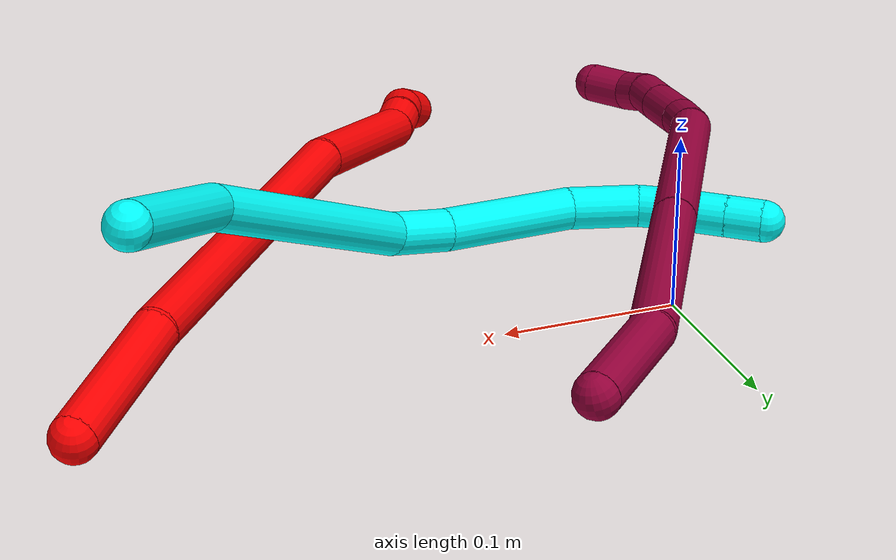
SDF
<sdf version="1.7">
 <world name="default">
  <model name="2">
   <static>0</static>
   <link name="2">
    <collision name="collision-cylinder-e_1_1_4">
     <pose>-0.02513 -0.033486 -0.007141 1.78091 -0.633139 -0.769302</pose>
     <geometry><cylinder><radius>0.0125</radius><length>0.084943</length></cylinder></geometry>
     <surface>
      <friction><ode><mu>1.16</mu><mu2>1.16</mu2><slip1>0</slip1><slip2>0</slip2></ode></friction>
      <contact><ode><kp>1e+06</kp><kd>1</kd><max_vel>0</max_vel><min_depth>0.001</min_depth></ode></contact>
     </surface>
    </collision>
    <visual name="visual-cylinder-e_1_1_4">
     <pose>-0.02513 -0.033486 -0.007141 1.78091 -0.633139 -0.769302</pose>
     <geometry><cylinder><radius>0.0125</radius><length>0.084943</length></cylinder></geometry>
     <material><ambient>1 0 0 1</ambient></material>
    </visual>
    <collision name="collision-cylinder-e_2_4_5">
     <pose>-0.11482 -0.155731 -0.056444 2.01426 -0.5813 -0.884022</pose>
     <geometry><cylinder><radius>0.0125</radius><length>0.235148</length></cylinder></geometry>
     <surface>
      <friction><ode><mu>1.16</mu><mu2>1.16</mu2><slip1>0</slip1><slip2>0</slip2></ode></friction>
      <contact><ode><kp>1e+06</kp><kd>1</kd><max_vel>0</max_vel><min_depth>0.001</min_depth></ode></contact>
     </surface>
    </collision>
    <visual name="visual-cylinder-e_2_4_5">
     <pose>-0.11482 -0.155731 -0.056444 2.01426 -0.5813 -0.884022</pose>
     <geometry><cylinder><radius>0.0125</radius><length>0.235148</length></cylinder></geometry>
     <material><ambient>1 0 0 1</ambient></material>
    </visual>
    <collision name="collision-cylinder-e_3_5_6">
     <pose>-0.212211 -0.281455 -0.128243 2.2466 -0.605936 -1.15454</pose>
     <geometry><cylinder><radius>0.0125</radius><length>0.115284</length></cylinder></geometry>
     <surface>
      <friction><ode><mu>1.16</mu><mu2>1.16</mu2><slip1>0</slip1><slip2>0</slip2></ode></friction>
      <contact><ode><kp>1e+06</kp><kd>1</kd><max_vel>0</max_vel><min_depth>0.001</min_depth></ode></contact>
     </surface>
    </collision>
    <visual name="visual-cylinder-e_3_5_6">
     <pose>-0.212211 -0.281455 -0.128243 2.2466 -0.605936 -1.15454</pose>
     <geometry><cylinder><radius>0.0125</radius><length>0.115284</length></cylinder></geometry>
     <material><ambient>1 0 0 1</ambient></material>
    </visual>
    <collision name="collision-cylinder-e_4_6_7">
     <pose>-0.249905 -0.327765 -0.162047 1.99025 -0.443938 -0.669333</pose>
     <geometry><cylinder><radius>0.0125</radius><length>0.022658</length></cylinder></geometry>
     <surface>
      <friction><ode><mu>1.16</mu><mu2>1.16</mu2><slip1>0</slip1><slip2>0</slip2></ode></friction>
      <contact><ode><kp>1e+06</kp><kd>1</kd><max_vel>0</max_vel><min_depth>0.001</min_depth></ode></contact>
     </surface>
    </collision>
    <visual name="visual-cylinder-e_4_6_7">
     <pose>-0.249905 -0.327765 -0.162047 1.99025 -0.443938 -0.669333</pose>
     <geometry><cylinder><radius>0.0125</radius><length>0.022658</length></cylinder></geometry>
     <material><ambient>1 0 0 1</ambient></material>
    </visual>
    <collision name="collision-cylinder-e_5_7_8">
     <pose>-0.258293 -0.345686 -0.171462 2.11992 -0.336842 -0.589111</pose>
     <geometry><cylinder><radius>0.0125</radius><length>0.021309</length></cylinder></geometry>
     <surface>
      <friction><ode><mu>1.16</mu><mu2>1.16</mu2><slip1>0</slip1><slip2>0</slip2></ode></friction>
      <contact><ode><kp>1e+06</kp><kd>1</kd><max_vel>0</max_vel><min_depth>0.001</min_depth></ode></contact>
     </surface>
    </collision>
    <visual name="visual-cylinder-e_5_7_8">
     <pose>-0.258293 -0.345686 -0.171462 2.11992 -0.336842 -0.589111</pose>
     <geometry><cylinder><radius>0.0125</radius><length>0.021309</length></cylinder></geometry>
     <material><ambient>1 0 0 1</ambient></material>
    </visual>
    <collision name="collision-cylinder-e_6_8_2">
     <pose>-0.267137 -0.359668 -0.183721 2.48487 -0.541406 -1.36712</pose>
     <geometry><cylinder><radius>0.0125</radius><length>0.020657</length></cylinder></geometry>
     <surface>
      <friction><ode><mu>1.16</mu><mu2>1.16</mu2><slip1>0</slip1><slip2>0</slip2></ode></friction>
      <contact><ode><kp>1e+06</kp><kd>1</kd><max_vel>0</max_vel><min_depth>0.001</min_depth></ode></contact>
     </surface>
    </collision>
    <visual name="visual-cylinder-e_6_8_2">
     <pose>-0.267137 -0.359668 -0.183721 2.48487 -0.541406 -1.36712</pose>
     <geometry><cylinder><radius>0.0125</radius><length>0.020657</length></cylinder></geometry>
     <material><ambient>1 0 0 1</ambient></material>
    </visual>
    <collision name="collision-sphere-2">
     <pose>-0.272459 -0.365072 -0.190731 0 -0 0</pose>
     <geometry><sphere><radius>0.0125</radius></sphere></geometry>
     <surface>
      <friction><ode><mu>1.16</mu><mu2>1.16</mu2><slip1>0</slip1><slip2>0</slip2></ode></friction>
      <contact><ode><kp>1e+06</kp><kd>1</kd><max_vel>0</max_vel><min_depth>0.001</min_depth></ode></contact>
     </surface>
    </collision>
    <visual name="visual-sphere-2">
     <pose>-0.272459 -0.365072 -0.190731 0 -0 0</pose>
     <geometry><sphere><radius>0.0125</radius></sphere></geometry>
     <material><ambient>1 0 0 1</ambient></material>
    </visual>
    <collision name="collision-sphere-4">
     <pose>-0.050259 -0.066973 -0.014283 0 -0 0</pose>
     <geometry><sphere><radius>0.0125</radius></sphere></geometry>
     <surface>
      <friction><ode><mu>1.16</mu><mu2>1.16</mu2><slip1>0</slip1><slip2>0</slip2></ode></friction>
      <contact><ode><kp>1e+06</kp><kd>1</kd><max_vel>0</max_vel><min_depth>0.001</min_depth></ode></contact>
     </surface>
    </collision>
    <visual name="visual-sphere-4">
     <pose>-0.050259 -0.066973 -0.014283 0 -0 0</pose>
     <geometry><sphere><radius>0.0125</radius></sphere></geometry>
     <material><ambient>1 0 0 1</ambient></material>
    </visual>
    <collision name="collision-sphere-1">
     <geometry><sphere><radius>0.0125</radius></sphere></geometry>
     <surface>
      <friction><ode><mu>1.16</mu><mu2>1.16</mu2><slip1>0</slip1><slip2>0</slip2></ode></friction>
      <contact><ode><kp>1e+06</kp><kd>1</kd><max_vel>0</max_vel><min_depth>0.001</min_depth></ode></contact>
     </surface>
    </collision>
    <visual name="visual-sphere-1">
     <geometry><sphere><radius>0.0125</radius></sphere></geometry>
     <material><ambient>1 0 0 1</ambient></material>
    </visual>
    <collision name="collision-sphere-8">
     <pose>-0.261814 -0.354264 -0.176711 0 -0 0</pose>
     <geometry><sphere><radius>0.0125</radius></sphere></geometry>
     <surface>
      <friction><ode><mu>1.16</mu><mu2>1.16</mu2><slip1>0</slip1><slip2>0</slip2></ode></friction>
      <contact><ode><kp>1e+06</kp><kd>1</kd><max_vel>0</max_vel><min_depth>0.001</min_depth></ode></contact>
     </surface>
    </collision>
    <visual name="visual-sphere-8">
     <pose>-0.261814 -0.354264 -0.176711 0 -0 0</pose>
     <geometry><sphere><radius>0.0125</radius></sphere></geometry>
     <material><ambient>1 0 0 1</ambient></material>
    </visual>
    <collision name="collision-sphere-5">
     <pose>-0.179381 -0.244488 -0.098606 0 -0 0</pose>
     <geometry><sphere><radius>0.0125</radius></sphere></geometry>
     <surface>
      <friction><ode><mu>1.16</mu><mu2>1.16</mu2><slip1>0</slip1><slip2>0</slip2></ode></friction>
      <contact><ode><kp>1e+06</kp><kd>1</kd><max_vel>0</max_vel><min_depth>0.001</min_depth></ode></contact>
     </surface>
    </collision>
    <visual name="visual-sphere-5">
     <pose>-0.179381 -0.244488 -0.098606 0 -0 0</pose>
     <geometry><sphere><radius>0.0125</radius></sphere></geometry>
     <material><ambient>1 0 0 1</ambient></material>
    </visual>
    <collision name="collision-sphere-6">
     <pose>-0.24504 -0.318421 -0.15788 0 -0 0</pose>
     <geometry><sphere><radius>0.0125</radius></sphere></geometry>
     <surface>
      <friction><ode><mu>1.16</mu><mu2>1.16</mu2><slip1>0</slip1><slip2>0</slip2></ode></friction>
      <contact><ode><kp>1e+06</kp><kd>1</kd><max_vel>0</max_vel><min_depth>0.001</min_depth></ode></contact>
     </surface>
    </collision>
    <visual name="visual-sphere-6">
     <pose>-0.24504 -0.318421 -0.15788 0 -0 0</pose>
     <geometry><sphere><radius>0.0125</radius></sphere></geometry>
     <material><ambient>1 0 0 1</ambient></material>
    </visual>
    <collision name="collision-sphere-7">
     <pose>-0.254771 -0.337109 -0.166214 0 -0 0</pose>
     <geometry><sphere><radius>0.0125</radius></sphere></geometry>
     <surface>
      <friction><ode><mu>1.16</mu><mu2>1.16</mu2><slip1>0</slip1><slip2>0</slip2></ode></friction>
      <contact><ode><kp>1e+06</kp><kd>1</kd><max_vel>0</max_vel><min_depth>0.001</min_depth></ode></contact>
     </surface>
    </collision>
    <visual name="visual-sphere-7">
     <pose>-0.254771 -0.337109 -0.166214 0 -0 0</pose>
     <geometry><sphere><radius>0.0125</radius></sphere></geometry>
     <material><ambient>1 0 0 1</ambient></material>
    </visual>
    <inertial>
     <pose>-0.140567 -0.188268 -0.079569 0 -0 0</pose>
     <mass>0.5</mass>
     <inertia>
      <ixx>-0.000203</ixx>
      <ixy>0</ixy>
      <ixz>0</ixz>
      <iyy>-0.000712</iyy>
      <iyz>0</iyz>
      <izz>0.001651</izz>
     </inertia>
    </inertial>
   </link>
   <pose>0.352297 0.102263 0.045996 -0.356861 0.063043 -0.066797</pose>
  </model>
  <model name="3">
   <static>0</static>
   <link name="3">
    <collision name="collision-cylinder-e_1_1_4">
     <pose>-0.027475 -0.030595 -0.032687 2.38923 -0.550419 -1.24129</pose>
     <geometry><cylinder><radius>0.0125</radius><length>0.10506</length></cylinder></geometry>
     <surface>
      <friction><ode><mu>1.16</mu><mu2>1.16</mu2><slip1>0</slip1><slip2>0</slip2></ode></friction>
      <contact><ode><kp>1e+06</kp><kd>1</kd><max_vel>0</max_vel><min_depth>0.001</min_depth></ode></contact>
     </surface>
    </collision>
    <visual name="visual-cylinder-e_1_1_4">
     <pose>-0.027475 -0.030595 -0.032687 2.38923 -0.550419 -1.24129</pose>
     <geometry><cylinder><radius>0.0125</radius><length>0.10506</length></cylinder></geometry>
     <material><ambient>0.003922 1 0.996078 1</ambient></material>
    </visual>
    <collision name="collision-cylinder-e_2_4_5">
     <pose>-0.112374 -0.083808 -0.115212 2.71558 -0.8094 -2.20641</pose>
     <geometry><cylinder><radius>0.0125</radius><length>0.158655</length></cylinder></geometry>
     <surface>
      <friction><ode><mu>1.16</mu><mu2>1.16</mu2><slip1>0</slip1><slip2>0</slip2></ode></friction>
      <contact><ode><kp>1e+06</kp><kd>1</kd><max_vel>0</max_vel><min_depth>0.001</min_depth></ode></contact>
     </surface>
    </collision>
    <visual name="visual-cylinder-e_2_4_5">
     <pose>-0.112374 -0.083808 -0.115212 2.71558 -0.8094 -2.20641</pose>
     <geometry><cylinder><radius>0.0125</radius><length>0.158655</length></cylinder></geometry>
     <material><ambient>0.003922 1 0.996078 1</ambient></material>
    </visual>
    <collision name="collision-cylinder-e_3_5_6">
     <pose>-0.187004 -0.108721 -0.170647 2.75226 -1.23278 -2.59874</pose>
     <geometry><cylinder><radius>0.0125</radius><length>0.036478</length></cylinder></geometry>
     <surface>
      <friction><ode><mu>1.16</mu><mu2>1.16</mu2><slip1>0</slip1><slip2>0</slip2></ode></friction>
      <contact><ode><kp>1e+06</kp><kd>1</kd><max_vel>0</max_vel><min_depth>0.001</min_depth></ode></contact>
     </surface>
    </collision>
    <visual name="visual-cylinder-e_3_5_6">
     <pose>-0.187004 -0.108721 -0.170647 2.75226 -1.23278 -2.59874</pose>
     <geometry><cylinder><radius>0.0125</radius><length>0.036478</length></cylinder></geometry>
     <material><ambient>0.003922 1 0.996078 1</ambient></material>
    </visual>
    <collision name="collision-cylinder-e_4_6_7">
     <pose>-0.244636 -0.115304 -0.182464 2.53818 -1.38602 -2.42447</pose>
     <geometry><cylinder><radius>0.0125</radius><length>0.082252</length></cylinder></geometry>
     <surface>
      <friction><ode><mu>1.16</mu><mu2>1.16</mu2><slip1>0</slip1><slip2>0</slip2></ode></friction>
      <contact><ode><kp>1e+06</kp><kd>1</kd><max_vel>0</max_vel><min_depth>0.001</min_depth></ode></contact>
     </surface>
    </collision>
    <visual name="visual-cylinder-e_4_6_7">
     <pose>-0.244636 -0.115304 -0.182464 2.53818 -1.38602 -2.42447</pose>
     <geometry><cylinder><radius>0.0125</radius><length>0.082252</length></cylinder></geometry>
     <material><ambient>0.003922 1 0.996078 1</ambient></material>
    </visual>
    <collision name="collision-cylinder-e_5_7_8">
     <pose>-0.305856 -0.115331 -0.18878 -1.59302 -1.36865 1.39047</pose>
     <geometry><cylinder><radius>0.0125</radius><length>0.042451</length></cylinder></geometry>
     <surface>
      <friction><ode><mu>1.16</mu><mu2>1.16</mu2><slip1>0</slip1><slip2>0</slip2></ode></friction>
      <contact><ode><kp>1e+06</kp><kd>1</kd><max_vel>0</max_vel><min_depth>0.001</min_depth></ode></contact>
     </surface>
    </collision>
    <visual name="visual-cylinder-e_5_7_8">
     <pose>-0.305856 -0.115331 -0.18878 -1.59302 -1.36865 1.39047</pose>
     <geometry><cylinder><radius>0.0125</radius><length>0.042451</length></cylinder></geometry>
     <material><ambient>0.003922 1 0.996078 1</ambient></material>
    </visual>
    <collision name="collision-cylinder-e_6_8_9">
     <pose>-0.336806 -0.104777 -0.186819 -1.25513 -0.993116 0.748995</pose>
     <geometry><cylinder><radius>0.0125</radius><length>0.024249</length></cylinder></geometry>
     <surface>
      <friction><ode><mu>1.16</mu><mu2>1.16</mu2><slip1>0</slip1><slip2>0</slip2></ode></friction>
      <contact><ode><kp>1e+06</kp><kd>1</kd><max_vel>0</max_vel><min_depth>0.001</min_depth></ode></contact>
     </surface>
    </collision>
    <visual name="visual-cylinder-e_6_8_9">
     <pose>-0.336806 -0.104777 -0.186819 -1.25513 -0.993116 0.748995</pose>
     <geometry><cylinder><radius>0.0125</radius><length>0.024249</length></cylinder></geometry>
     <material><ambient>0.003922 1 0.996078 1</ambient></material>
    </visual>
    <collision name="collision-cylinder-e_7_9_10">
     <pose>-0.358614 -0.090134 -0.182125 -1.26474 -0.926258 0.701541</pose>
     <geometry><cylinder><radius>0.0125</radius><length>0.029149</length></cylinder></geometry>
     <surface>
      <friction><ode><mu>1.16</mu><mu2>1.16</mu2><slip1>0</slip1><slip2>0</slip2></ode></friction>
      <contact><ode><kp>1e+06</kp><kd>1</kd><max_vel>0</max_vel><min_depth>0.001</min_depth></ode></contact>
     </surface>
    </collision>
    <visual name="visual-cylinder-e_7_9_10">
     <pose>-0.358614 -0.090134 -0.182125 -1.26474 -0.926258 0.701541</pose>
     <geometry><cylinder><radius>0.0125</radius><length>0.029149</length></cylinder></geometry>
     <material><ambient>0.003922 1 0.996078 1</ambient></material>
    </visual>
    <collision name="collision-cylinder-e_8_10_2">
     <pose>-0.378941 -0.075562 -0.177538 -1.26725 -0.926399 0.703351</pose>
     <geometry><cylinder><radius>0.0125</radius><length>0.021706</length></cylinder></geometry>
     <surface>
      <friction><ode><mu>1.16</mu><mu2>1.16</mu2><slip1>0</slip1><slip2>0</slip2></ode></friction>
      <contact><ode><kp>1e+06</kp><kd>1</kd><max_vel>0</max_vel><min_depth>0.001</min_depth></ode></contact>
     </surface>
    </collision>
    <visual name="visual-cylinder-e_8_10_2">
     <pose>-0.378941 -0.075562 -0.177538 -1.26725 -0.926399 0.703351</pose>
     <geometry><cylinder><radius>0.0125</radius><length>0.021706</length></cylinder></geometry>
     <material><ambient>0.003922 1 0.996078 1</ambient></material>
    </visual>
    <collision name="collision-sphere-2">
     <pose>-0.387618 -0.06934 -0.175589 0 -0 0</pose>
     <geometry><sphere><radius>0.0125</radius></sphere></geometry>
     <surface>
      <friction><ode><mu>1.16</mu><mu2>1.16</mu2><slip1>0</slip1><slip2>0</slip2></ode></friction>
      <contact><ode><kp>1e+06</kp><kd>1</kd><max_vel>0</max_vel><min_depth>0.001</min_depth></ode></contact>
     </surface>
    </collision>
    <visual name="visual-sphere-2">
     <pose>-0.387618 -0.06934 -0.175589 0 -0 0</pose>
     <geometry><sphere><radius>0.0125</radius></sphere></geometry>
     <material><ambient>0.003922 1 0.996078 1</ambient></material>
    </visual>
    <collision name="collision-sphere-10">
     <pose>-0.370264 -0.081784 -0.179487 0 -0 0</pose>
     <geometry><sphere><radius>0.0125</radius></sphere></geometry>
     <surface>
      <friction><ode><mu>1.16</mu><mu2>1.16</mu2><slip1>0</slip1><slip2>0</slip2></ode></friction>
      <contact><ode><kp>1e+06</kp><kd>1</kd><max_vel>0</max_vel><min_depth>0.001</min_depth></ode></contact>
     </surface>
    </collision>
    <visual name="visual-sphere-10">
     <pose>-0.370264 -0.081784 -0.179487 0 -0 0</pose>
     <geometry><sphere><radius>0.0125</radius></sphere></geometry>
     <material><ambient>0.003922 1 0.996078 1</ambient></material>
    </visual>
    <collision name="collision-sphere-9">
     <pose>-0.346963 -0.098483 -0.184764 0 -0 0</pose>
     <geometry><sphere><radius>0.0125</radius></sphere></geometry>
     <surface>
      <friction><ode><mu>1.16</mu><mu2>1.16</mu2><slip1>0</slip1><slip2>0</slip2></ode></friction>
      <contact><ode><kp>1e+06</kp><kd>1</kd><max_vel>0</max_vel><min_depth>0.001</min_depth></ode></contact>
     </surface>
    </collision>
    <visual name="visual-sphere-9">
     <pose>-0.346963 -0.098483 -0.184764 0 -0 0</pose>
     <geometry><sphere><radius>0.0125</radius></sphere></geometry>
     <material><ambient>0.003922 1 0.996078 1</ambient></material>
    </visual>
    <collision name="collision-sphere-4">
     <pose>-0.054951 -0.061191 -0.065373 0 -0 0</pose>
     <geometry><sphere><radius>0.0125</radius></sphere></geometry>
     <surface>
      <friction><ode><mu>1.16</mu><mu2>1.16</mu2><slip1>0</slip1><slip2>0</slip2></ode></friction>
      <contact><ode><kp>1e+06</kp><kd>1</kd><max_vel>0</max_vel><min_depth>0.001</min_depth></ode></contact>
     </surface>
    </collision>
    <visual name="visual-sphere-4">
     <pose>-0.054951 -0.061191 -0.065373 0 -0 0</pose>
     <geometry><sphere><radius>0.0125</radius></sphere></geometry>
     <material><ambient>0.003922 1 0.996078 1</ambient></material>
    </visual>
    <collision name="collision-sphere-1">
     <geometry><sphere><radius>0.0125</radius></sphere></geometry>
     <surface>
      <friction><ode><mu>1.16</mu><mu2>1.16</mu2><slip1>0</slip1><slip2>0</slip2></ode></friction>
      <contact><ode><kp>1e+06</kp><kd>1</kd><max_vel>0</max_vel><min_depth>0.001</min_depth></ode></contact>
     </surface>
    </collision>
    <visual name="visual-sphere-1">
     <geometry><sphere><radius>0.0125</radius></sphere></geometry>
     <material><ambient>0.003922 1 0.996078 1</ambient></material>
    </visual>
    <collision name="collision-sphere-8">
     <pose>-0.326649 -0.111071 -0.188875 0 -0 0</pose>
     <geometry><sphere><radius>0.0125</radius></sphere></geometry>
     <surface>
      <friction><ode><mu>1.16</mu><mu2>1.16</mu2><slip1>0</slip1><slip2>0</slip2></ode></friction>
      <contact><ode><kp>1e+06</kp><kd>1</kd><max_vel>0</max_vel><min_depth>0.001</min_depth></ode></contact>
     </surface>
    </collision>
    <visual name="visual-sphere-8">
     <pose>-0.326649 -0.111071 -0.188875 0 -0 0</pose>
     <geometry><sphere><radius>0.0125</radius></sphere></geometry>
     <material><ambient>0.003922 1 0.996078 1</ambient></material>
    </visual>
    <collision name="collision-sphere-5">
     <pose>-0.169797 -0.106425 -0.165051 0 -0 0</pose>
     <geometry><sphere><radius>0.0125</radius></sphere></geometry>
     <surface>
      <friction><ode><mu>1.16</mu><mu2>1.16</mu2><slip1>0</slip1><slip2>0</slip2></ode></friction>
      <contact><ode><kp>1e+06</kp><kd>1</kd><max_vel>0</max_vel><min_depth>0.001</min_depth></ode></contact>
     </surface>
    </collision>
    <visual name="visual-sphere-5">
     <pose>-0.169797 -0.106425 -0.165051 0 -0 0</pose>
     <geometry><sphere><radius>0.0125</radius></sphere></geometry>
     <material><ambient>0.003922 1 0.996078 1</ambient></material>
    </visual>
    <collision name="collision-sphere-6">
     <pose>-0.204211 -0.111017 -0.176242 0 -0 0</pose>
     <geometry><sphere><radius>0.0125</radius></sphere></geometry>
     <surface>
      <friction><ode><mu>1.16</mu><mu2>1.16</mu2><slip1>0</slip1><slip2>0</slip2></ode></friction>
      <contact><ode><kp>1e+06</kp><kd>1</kd><max_vel>0</max_vel><min_depth>0.001</min_depth></ode></contact>
     </surface>
    </collision>
    <visual name="visual-sphere-6">
     <pose>-0.204211 -0.111017 -0.176242 0 -0 0</pose>
     <geometry><sphere><radius>0.0125</radius></sphere></geometry>
     <material><ambient>0.003922 1 0.996078 1</ambient></material>
    </visual>
    <collision name="collision-sphere-7">
     <pose>-0.285062 -0.119592 -0.188685 0 -0 0</pose>
     <geometry><sphere><radius>0.0125</radius></sphere></geometry>
     <surface>
      <friction><ode><mu>1.16</mu><mu2>1.16</mu2><slip1>0</slip1><slip2>0</slip2></ode></friction>
      <contact><ode><kp>1e+06</kp><kd>1</kd><max_vel>0</max_vel><min_depth>0.001</min_depth></ode></contact>
     </surface>
    </collision>
    <visual name="visual-sphere-7">
     <pose>-0.285062 -0.119592 -0.188685 0 -0 0</pose>
     <geometry><sphere><radius>0.0125</radius></sphere></geometry>
     <material><ambient>0.003922 1 0.996078 1</ambient></material>
    </visual>
    <inertial>
     <pose>-0.174977 -0.08333 -0.129305 0 -0 0</pose>
     <mass>0.5</mass>
     <inertia>
      <ixx>-0.000418</ixx>
      <ixy>0</ixy>
      <ixz>0</ixz>
      <iyy>6.5e-05</iyy>
      <iyz>0</iyz>
      <izz>0.000507</izz>
     </inertia>
    </inertial>
   </link>
   <pose>0.312769 0.061446 0.128305 -0.377318 0.055182 -0.028913</pose>
  </model>
  <model name="8">
   <static>0</static>
   <link name="8">
    <collision name="collision-cylinder-e_1_1_4">
     <pose>-0.027021 -0.021774 -0.007699 1.91067 -0.863573 -1.1551</pose>
     <geometry><cylinder><radius>0.0125</radius><length>0.071091</length></cylinder></geometry>
     <surface>
      <friction><ode><mu>1.16</mu><mu2>1.16</mu2><slip1>0</slip1><slip2>0</slip2></ode></friction>
      <contact><ode><kp>1e+06</kp><kd>1</kd><max_vel>0</max_vel><min_depth>0.001</min_depth></ode></contact>
     </surface>
    </collision>
    <visual name="visual-cylinder-e_1_1_4">
     <pose>-0.027021 -0.021774 -0.007699 1.91067 -0.863573 -1.1551</pose>
     <geometry><cylinder><radius>0.0125</radius><length>0.071091</length></cylinder></geometry>
     <material><ambient>0.584314 0 0.227451 1</ambient></material>
    </visual>
    <collision name="collision-cylinder-e_2_4_5">
     <pose>-0.091903 -0.098395 -0.026984 1.77897 -0.594027 -0.721871</pose>
     <geometry><cylinder><radius>0.0125</radius><length>0.135291</length></cylinder></geometry>
     <surface>
      <friction><ode><mu>1.16</mu><mu2>1.16</mu2><slip1>0</slip1><slip2>0</slip2></ode></friction>
      <contact><ode><kp>1e+06</kp><kd>1</kd><max_vel>0</max_vel><min_depth>0.001</min_depth></ode></contact>
     </surface>
    </collision>
    <visual name="visual-cylinder-e_2_4_5">
     <pose>-0.091903 -0.098395 -0.026984 1.77897 -0.594027 -0.721871</pose>
     <geometry><cylinder><radius>0.0125</radius><length>0.135291</length></cylinder></geometry>
     <material><ambient>0.584314 0 0.227451 1</ambient></material>
    </visual>
    <collision name="collision-cylinder-e_3_5_6">
     <pose>-0.171224 -0.216834 -0.056124 1.84015 -0.561085 -0.723608</pose>
     <geometry><cylinder><radius>0.0125</radius><length>0.155833</length></cylinder></geometry>
     <surface>
      <friction><ode><mu>1.16</mu><mu2>1.16</mu2><slip1>0</slip1><slip2>0</slip2></ode></friction>
      <contact><ode><kp>1e+06</kp><kd>1</kd><max_vel>0</max_vel><min_depth>0.001</min_depth></ode></contact>
     </surface>
    </collision>
    <visual name="visual-cylinder-e_3_5_6">
     <pose>-0.171224 -0.216834 -0.056124 1.84015 -0.561085 -0.723608</pose>
     <geometry><cylinder><radius>0.0125</radius><length>0.155833</length></cylinder></geometry>
     <material><ambient>0.584314 0 0.227451 1</ambient></material>
    </visual>
    <collision name="collision-cylinder-e_4_6_7">
     <pose>-0.21673 -0.294315 -0.078052 1.87583 -0.271036 -0.367574</pose>
     <geometry><cylinder><radius>0.0125</radius><length>0.030227</length></cylinder></geometry>
     <surface>
      <friction><ode><mu>1.16</mu><mu2>1.16</mu2><slip1>0</slip1><slip2>0</slip2></ode></friction>
      <contact><ode><kp>1e+06</kp><kd>1</kd><max_vel>0</max_vel><min_depth>0.001</min_depth></ode></contact>
     </surface>
    </collision>
    <visual name="visual-cylinder-e_4_6_7">
     <pose>-0.21673 -0.294315 -0.078052 1.87583 -0.271036 -0.367574</pose>
     <geometry><cylinder><radius>0.0125</radius><length>0.030227</length></cylinder></geometry>
     <material><ambient>0.584314 0 0.227451 1</ambient></material>
    </visual>
    <collision name="collision-cylinder-e_5_7_8">
     <pose>-0.222879 -0.325555 -0.084776 1.70544 -0.11952 -0.136753</pose>
     <geometry><cylinder><radius>0.0125</radius><length>0.03527</length></cylinder></geometry>
     <surface>
      <friction><ode><mu>1.16</mu><mu2>1.16</mu2><slip1>0</slip1><slip2>0</slip2></ode></friction>
      <contact><ode><kp>1e+06</kp><kd>1</kd><max_vel>0</max_vel><min_depth>0.001</min_depth></ode></contact>
     </surface>
    </collision>
    <visual name="visual-cylinder-e_5_7_8">
     <pose>-0.222879 -0.325555 -0.084776 1.70544 -0.11952 -0.136753</pose>
     <geometry><cylinder><radius>0.0125</radius><length>0.03527</length></cylinder></geometry>
     <material><ambient>0.584314 0 0.227451 1</ambient></material>
    </visual>
    <collision name="collision-cylinder-e_6_8_9">
     <pose>-0.226787 -0.355548 -0.088816 1.70367 -0.140588 -0.160548</pose>
     <geometry><cylinder><radius>0.0125</radius><length>0.025764</length></cylinder></geometry>
     <surface>
      <friction><ode><mu>1.16</mu><mu2>1.16</mu2><slip1>0</slip1><slip2>0</slip2></ode></friction>
      <contact><ode><kp>1e+06</kp><kd>1</kd><max_vel>0</max_vel><min_depth>0.001</min_depth></ode></contact>
     </surface>
    </collision>
    <visual name="visual-cylinder-e_6_8_9">
     <pose>-0.226787 -0.355548 -0.088816 1.70367 -0.140588 -0.160548</pose>
     <geometry><cylinder><radius>0.0125</radius><length>0.025764</length></cylinder></geometry>
     <material><ambient>0.584314 0 0.227451 1</ambient></material>
    </visual>
    <collision name="collision-cylinder-e_7_9_10">
     <pose>-0.226849 -0.377947 -0.092757 1.79756 0.17233 0.21631</pose>
     <geometry><cylinder><radius>0.0125</radius><length>0.020327</length></cylinder></geometry>
     <surface>
      <friction><ode><mu>1.16</mu><mu2>1.16</mu2><slip1>0</slip1><slip2>0</slip2></ode></friction>
      <contact><ode><kp>1e+06</kp><kd>1</kd><max_vel>0</max_vel><min_depth>0.001</min_depth></ode></contact>
     </surface>
    </collision>
    <visual name="visual-cylinder-e_7_9_10">
     <pose>-0.226849 -0.377947 -0.092757 1.79756 0.17233 0.21631</pose>
     <geometry><cylinder><radius>0.0125</radius><length>0.020327</length></cylinder></geometry>
     <material><ambient>0.584314 0 0.227451 1</ambient></material>
    </visual>
    <collision name="collision-cylinder-e_8_10_2">
     <pose>-0.218841 -0.399029 -0.092995 1.39484 0.498752 0.420475</pose>
     <geometry><cylinder><radius>0.0125</radius><length>0.026196</length></cylinder></geometry>
     <surface>
      <friction><ode><mu>1.16</mu><mu2>1.16</mu2><slip1>0</slip1><slip2>0</slip2></ode></friction>
      <contact><ode><kp>1e+06</kp><kd>1</kd><max_vel>0</max_vel><min_depth>0.001</min_depth></ode></contact>
     </surface>
    </collision>
    <visual name="visual-cylinder-e_8_10_2">
     <pose>-0.218841 -0.399029 -0.092995 1.39484 0.498752 0.420475</pose>
     <geometry><cylinder><radius>0.0125</radius><length>0.026196</length></cylinder></geometry>
     <material><ambient>0.584314 0 0.227451 1</ambient></material>
    </visual>
    <collision name="collision-sphere-2">
     <pose>-0.212576 -0.410354 -0.090981 0 -0 0</pose>
     <geometry><sphere><radius>0.0125</radius></sphere></geometry>
     <surface>
      <friction><ode><mu>1.16</mu><mu2>1.16</mu2><slip1>0</slip1><slip2>0</slip2></ode></friction>
      <contact><ode><kp>1e+06</kp><kd>1</kd><max_vel>0</max_vel><min_depth>0.001</min_depth></ode></contact>
     </surface>
    </collision>
    <visual name="visual-sphere-2">
     <pose>-0.212576 -0.410354 -0.090981 0 -0 0</pose>
     <geometry><sphere><radius>0.0125</radius></sphere></geometry>
     <material><ambient>0.584314 0 0.227451 1</ambient></material>
    </visual>
    <collision name="collision-sphere-10">
     <pose>-0.225106 -0.387704 -0.095008 0 -0 0</pose>
     <geometry><sphere><radius>0.0125</radius></sphere></geometry>
     <surface>
      <friction><ode><mu>1.16</mu><mu2>1.16</mu2><slip1>0</slip1><slip2>0</slip2></ode></friction>
      <contact><ode><kp>1e+06</kp><kd>1</kd><max_vel>0</max_vel><min_depth>0.001</min_depth></ode></contact>
     </surface>
    </collision>
    <visual name="visual-sphere-10">
     <pose>-0.225106 -0.387704 -0.095008 0 -0 0</pose>
     <geometry><sphere><radius>0.0125</radius></sphere></geometry>
     <material><ambient>0.584314 0 0.227451 1</ambient></material>
    </visual>
    <collision name="collision-sphere-9">
     <pose>-0.228592 -0.368191 -0.090506 0 -0 0</pose>
     <geometry><sphere><radius>0.0125</radius></sphere></geometry>
     <surface>
      <friction><ode><mu>1.16</mu><mu2>1.16</mu2><slip1>0</slip1><slip2>0</slip2></ode></friction>
      <contact><ode><kp>1e+06</kp><kd>1</kd><max_vel>0</max_vel><min_depth>0.001</min_depth></ode></contact>
     </surface>
    </collision>
    <visual name="visual-sphere-9">
     <pose>-0.228592 -0.368191 -0.090506 0 -0 0</pose>
     <geometry><sphere><radius>0.0125</radius></sphere></geometry>
     <material><ambient>0.584314 0 0.227451 1</ambient></material>
    </visual>
    <collision name="collision-sphere-4">
     <pose>-0.054041 -0.043547 -0.015398 0 -0 0</pose>
     <geometry><sphere><radius>0.0125</radius></sphere></geometry>
     <surface>
      <friction><ode><mu>1.16</mu><mu2>1.16</mu2><slip1>0</slip1><slip2>0</slip2></ode></friction>
      <contact><ode><kp>1e+06</kp><kd>1</kd><max_vel>0</max_vel><min_depth>0.001</min_depth></ode></contact>
     </surface>
    </collision>
    <visual name="visual-sphere-4">
     <pose>-0.054041 -0.043547 -0.015398 0 -0 0</pose>
     <geometry><sphere><radius>0.0125</radius></sphere></geometry>
     <material><ambient>0.584314 0 0.227451 1</ambient></material>
    </visual>
    <collision name="collision-sphere-1">
     <geometry><sphere><radius>0.0125</radius></sphere></geometry>
     <surface>
      <friction><ode><mu>1.16</mu><mu2>1.16</mu2><slip1>0</slip1><slip2>0</slip2></ode></friction>
      <contact><ode><kp>1e+06</kp><kd>1</kd><max_vel>0</max_vel><min_depth>0.001</min_depth></ode></contact>
     </surface>
    </collision>
    <visual name="visual-sphere-1">
     <geometry><sphere><radius>0.0125</radius></sphere></geometry>
     <material><ambient>0.584314 0 0.227451 1</ambient></material>
    </visual>
    <collision name="collision-sphere-8">
     <pose>-0.224982 -0.342905 -0.087126 0 -0 0</pose>
     <geometry><sphere><radius>0.0125</radius></sphere></geometry>
     <surface>
      <friction><ode><mu>1.16</mu><mu2>1.16</mu2><slip1>0</slip1><slip2>0</slip2></ode></friction>
      <contact><ode><kp>1e+06</kp><kd>1</kd><max_vel>0</max_vel><min_depth>0.001</min_depth></ode></contact>
     </surface>
    </collision>
    <visual name="visual-sphere-8">
     <pose>-0.224982 -0.342905 -0.087126 0 -0 0</pose>
     <geometry><sphere><radius>0.0125</radius></sphere></geometry>
     <material><ambient>0.584314 0 0.227451 1</ambient></material>
    </visual>
    <collision name="collision-sphere-5">
     <pose>-0.129764 -0.153242 -0.038569 0 -0 0</pose>
     <geometry><sphere><radius>0.0125</radius></sphere></geometry>
     <surface>
      <friction><ode><mu>1.16</mu><mu2>1.16</mu2><slip1>0</slip1><slip2>0</slip2></ode></friction>
      <contact><ode><kp>1e+06</kp><kd>1</kd><max_vel>0</max_vel><min_depth>0.001</min_depth></ode></contact>
     </surface>
    </collision>
    <visual name="visual-sphere-5">
     <pose>-0.129764 -0.153242 -0.038569 0 -0 0</pose>
     <geometry><sphere><radius>0.0125</radius></sphere></geometry>
     <material><ambient>0.584314 0 0.227451 1</ambient></material>
    </visual>
    <collision name="collision-sphere-6">
     <pose>-0.212684 -0.280425 -0.073679 0 -0 0</pose>
     <geometry><sphere><radius>0.0125</radius></sphere></geometry>
     <surface>
      <friction><ode><mu>1.16</mu><mu2>1.16</mu2><slip1>0</slip1><slip2>0</slip2></ode></friction>
      <contact><ode><kp>1e+06</kp><kd>1</kd><max_vel>0</max_vel><min_depth>0.001</min_depth></ode></contact>
     </surface>
    </collision>
    <visual name="visual-sphere-6">
     <pose>-0.212684 -0.280425 -0.073679 0 -0 0</pose>
     <geometry><sphere><radius>0.0125</radius></sphere></geometry>
     <material><ambient>0.584314 0 0.227451 1</ambient></material>
    </visual>
    <collision name="collision-sphere-7">
     <pose>-0.220777 -0.308204 -0.082425 0 -0 0</pose>
     <geometry><sphere><radius>0.0125</radius></sphere></geometry>
     <surface>
      <friction><ode><mu>1.16</mu><mu2>1.16</mu2><slip1>0</slip1><slip2>0</slip2></ode></friction>
      <contact><ode><kp>1e+06</kp><kd>1</kd><max_vel>0</max_vel><min_depth>0.001</min_depth></ode></contact>
     </surface>
    </collision>
    <visual name="visual-sphere-7">
     <pose>-0.220777 -0.308204 -0.082425 0 -0 0</pose>
     <geometry><sphere><radius>0.0125</radius></sphere></geometry>
     <material><ambient>0.584314 0 0.227451 1</ambient></material>
    </visual>
    <inertial>
     <pose>-0.143272 -0.192649 -0.049806 0 -0 0</pose>
     <mass>0.5</mass>
     <inertia>
      <ixx>2.5e-05</ixx>
      <ixy>0</ixy>
      <ixz>0</ixz>
      <iyy>-0.000244</iyy>
      <iyz>0</iyz>
      <izz>0.000776</izz>
     </inertia>
    </inertial>
   </link>
   <pose>0.109933 0.142324 0.041859 0.013208 0.29962 0.100468</pose>
  </model>
 </world>
</sdf>
